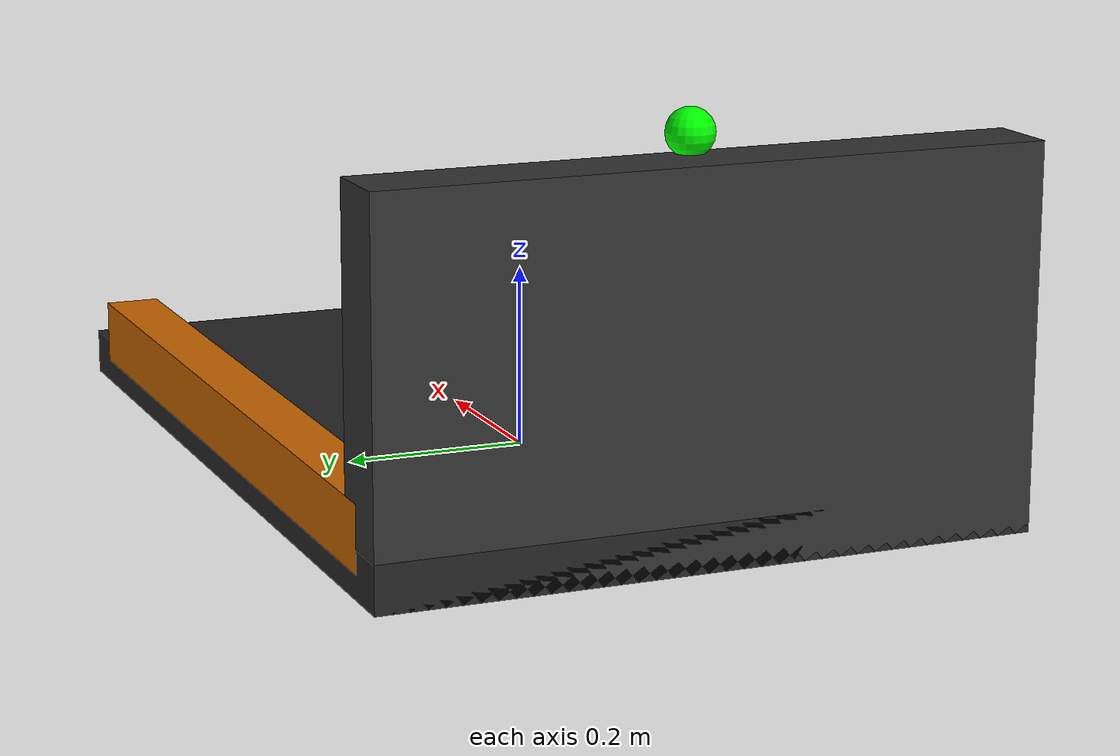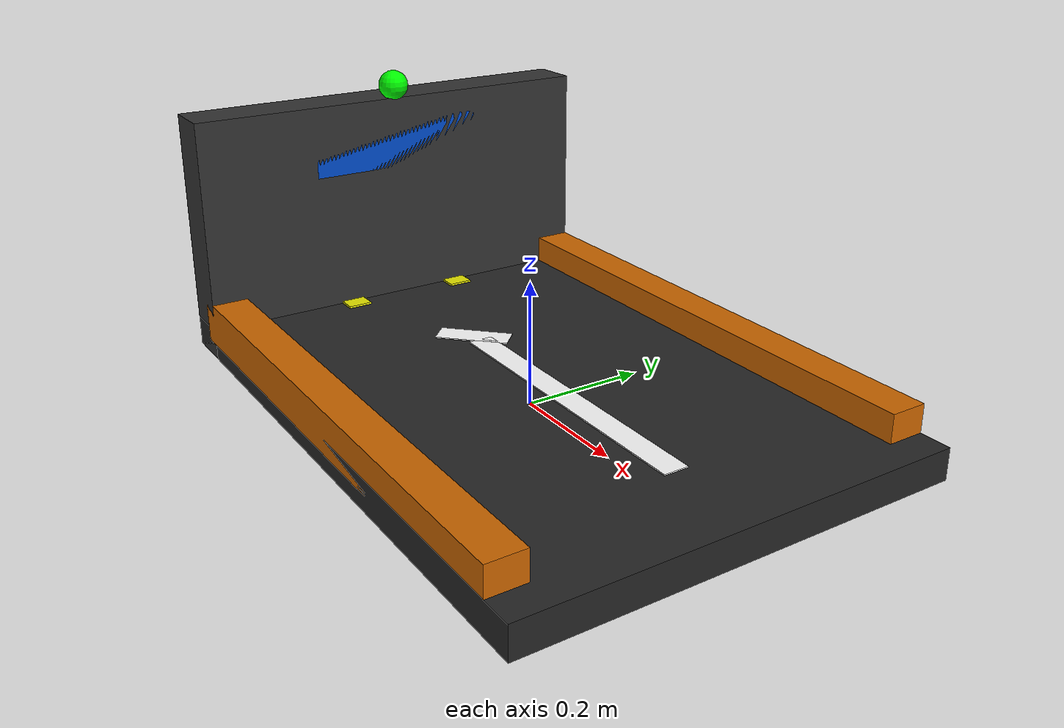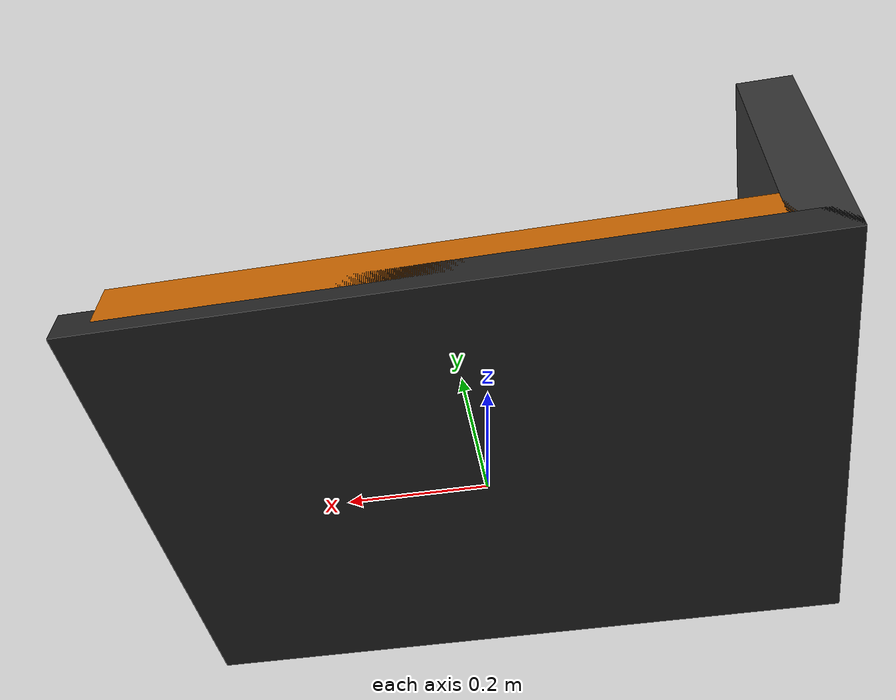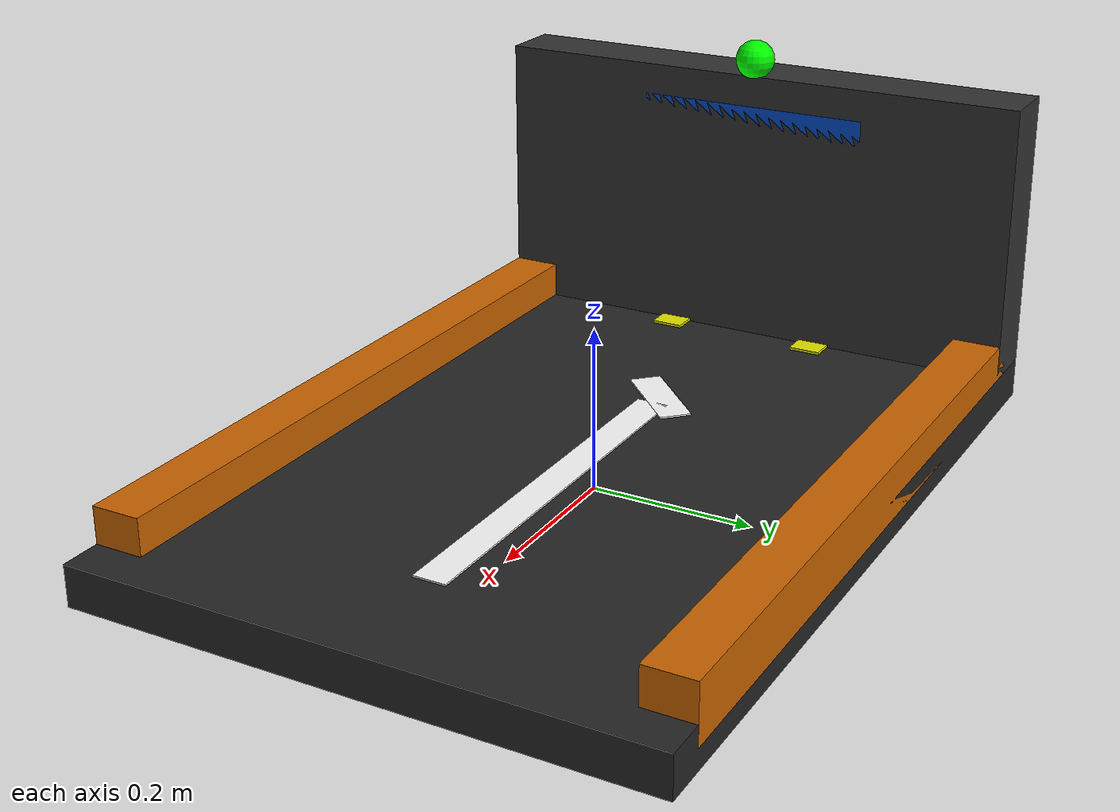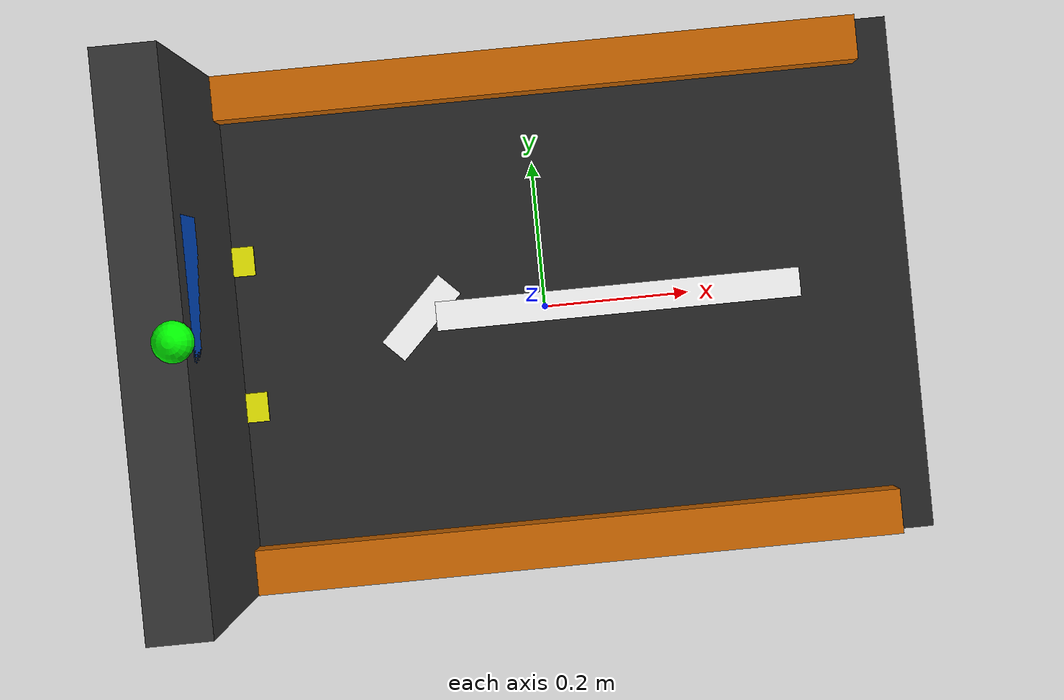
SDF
<?xml version="1.0"?>
<sdf version="1.7">
  <model name="docking_station">
    <static>true</static>
    <link name="link">
      <!-- Base platform -->
      <collision name="base_col"><pose>0 0 0.025 0 0 0</pose><geometry><box><size>1.0 0.7 0.05</size></box></geometry></collision>
      <visual name="base">
        <pose>0 0 0.025 0 0 0</pose>
        <geometry><box><size>1.0 0.7 0.05</size></box></geometry>
        <material><ambient>0.15 0.15 0.15 1</ambient><diffuse>0.15 0.15 0.15 1</diffuse></material>
      </visual>

      <!-- Back wall / housing -->
      <collision name="back_wall_col"><pose>-0.46 0 0.20 0 0 0</pose><geometry><box><size>0.08 0.7 0.40</size></box></geometry></collision>
      <visual name="back_wall">
        <pose>-0.46 0 0.20 0 0 0</pose>
        <geometry><box><size>0.08 0.7 0.40</size></box></geometry>
        <material><ambient>0.2 0.2 0.2 1</ambient><diffuse>0.2 0.2 0.2 1</diffuse></material>
      </visual>

      <!-- Side guide rails (left) -->
      <collision name="rail_left_col"><pose>0 0.32 0.06 0 0 0</pose><geometry><box><size>0.9 0.06 0.07</size></box></geometry></collision>
      <visual name="rail_left">
        <pose>0 0.32 0.06 0 0 0</pose>
        <geometry><box><size>0.9 0.06 0.07</size></box></geometry>
        <material><ambient>0.8 0.4 0.0 1</ambient><diffuse>0.8 0.4 0.0 1</diffuse></material>
      </visual>

      <!-- Side guide rails (right) -->
      <collision name="rail_right_col"><pose>0 -0.32 0.06 0 0 0</pose><geometry><box><size>0.9 0.06 0.07</size></box></geometry></collision>
      <visual name="rail_right">
        <pose>0 -0.32 0.06 0 0 0</pose>
        <geometry><box><size>0.9 0.06 0.07</size></box></geometry>
        <material><ambient>0.8 0.4 0.0 1</ambient><diffuse>0.8 0.4 0.0 1</diffuse></material>
      </visual>

      <!-- Charging contact pads -->
      <visual name="contact_pad_l">
        <pose>-0.42 0.1 0.051 0 0 0</pose>
        <geometry><box><size>0.06 0.04 0.005</size></box></geometry>
        <material><ambient>0.9 0.9 0.0 1</ambient><diffuse>0.9 0.9 0.0 1</diffuse></material>
      </visual>
      <visual name="contact_pad_r">
        <pose>-0.42 -0.1 0.051 0 0 0</pose>
        <geometry><box><size>0.06 0.04 0.005</size></box></geometry>
        <material><ambient>0.9 0.9 0.0 1</ambient><diffuse>0.9 0.9 0.0 1</diffuse></material>
      </visual>

      <!-- Alignment arrow marking on floor -->
      <visual name="arrow_shaft">
        <pose>0.1 0 0.051 0 0 0</pose>
        <geometry><box><size>0.50 0.04 0.002</size></box></geometry>
        <material><ambient>1.0 1.0 1.0 1</ambient></material>
      </visual>
      <visual name="arrow_head">
        <pose>-0.17 0 0.051 0 0 0.785</pose>
        <geometry><box><size>0.12 0.04 0.002</size></box></geometry>
        <material><ambient>1.0 1.0 1.0 1</ambient></material>
      </visual>

      <!-- Status LED (green = available) -->
      <visual name="status_led">
        <pose>-0.43 0 0.42 0 0 0</pose>
        <geometry><sphere><radius>0.025</radius></sphere></geometry>
        <material><ambient>0 1 0 1</ambient><diffuse>0 1 0 1</diffuse><emissive>0 0.8 0 1</emissive></material>
      </visual>

      <!-- Label sign -->
      <visual name="label_plate">
        <pose>-0.43 0 0.32 0 0 0</pose>
        <geometry><box><size>0.02 0.3 0.08</size></box></geometry>
        <material><ambient>0.0 0.3 0.8 1</ambient></material>
      </visual>
    </link>
  </model>
</sdf>
